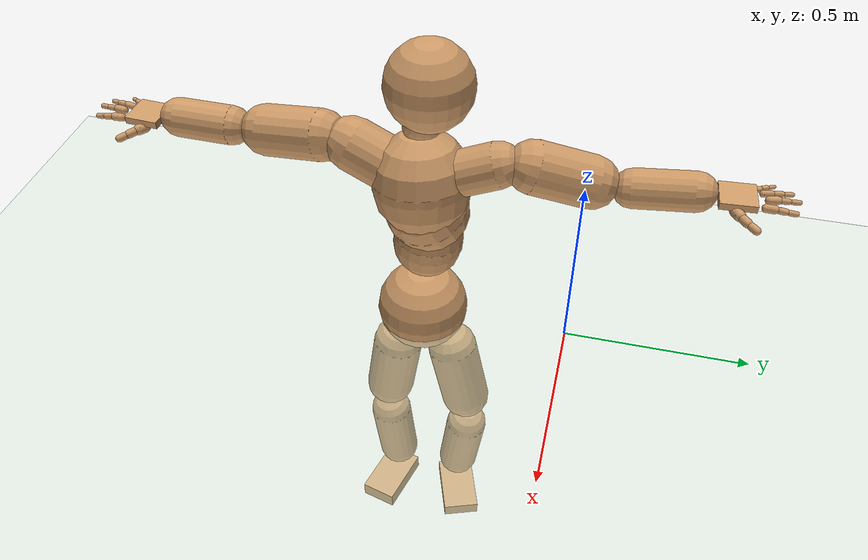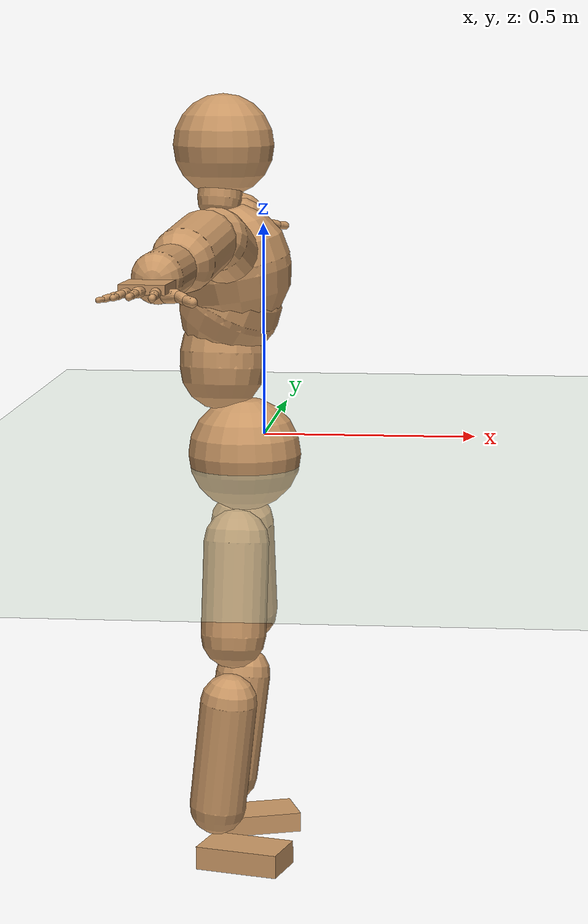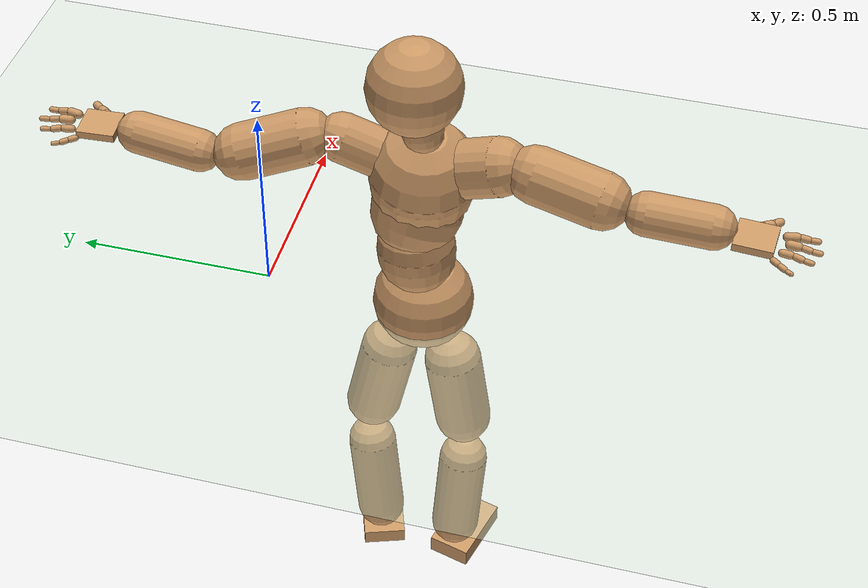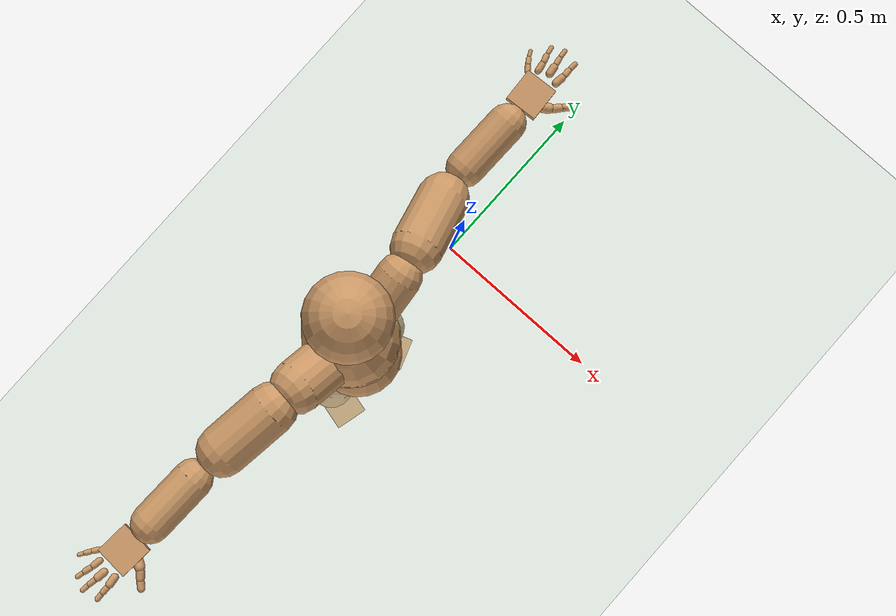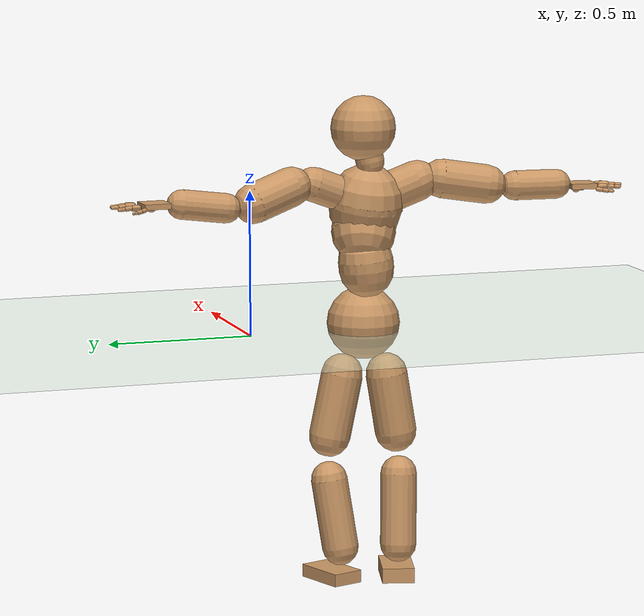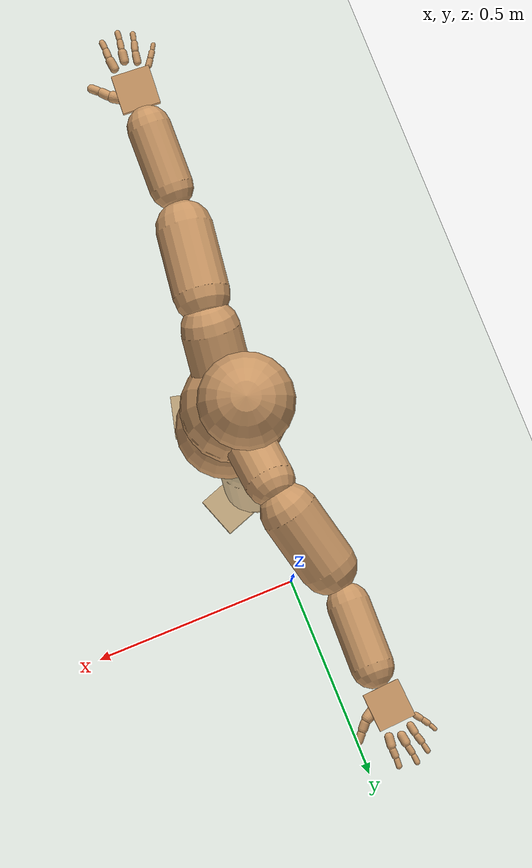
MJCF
<mujoco model="humanoid">
  <compiler coordinate="local" angle="radian"/>
  <default>
    <joint damping="0.0" armature="0.01" stiffness="0.0" limited="true"/>
    <geom conaffinity="1" condim="3" contype="7" margin="0.001" rgba="0.8 0.6 .4 1"/>
  </default>
  <asset>
    <texture type="skybox" builtin="gradient" rgb1=".4 .5 .6" rgb2="0 0 0" width="100" height="100"/>
    <texture builtin="flat" height="1278" mark="cross" markrgb="1 1 1" name="texgeom" random="0.01" rgb1="0.8 0.6 0.4" rgb2="0.8 0.6 0.4" type="cube" width="127"/>
    <texture builtin="checker" height="100" name="texplane" rgb1="0 0 0" rgb2="0.8 0.8 0.8" type="2d" width="100"/>
    <material name="MatPlane" reflectance="0.5" shininess="1" specular="1" texrepeat="60 60" texture="texplane"/>
    <material name="geom" texture="texgeom" texuniform="true"/>
  </asset>
  <worldbody>
    <light cutoff="100" diffuse="1 1 1" dir="-0 0 -1.3" directional="true" exponent="1" pos="0 0 1.3" specular=".1 .1 .1"/>
    <geom conaffinity="1" condim="3" name="floor" pos="0 0 0" rgba="0.8 0.9 0.8 1" size="100 100 .2" type="plane" material="MatPlane"/>
    <body name="Pelvis" pos="0.0021 -0.4046 0.0258">
      <freejoint name="Pelvis"/>
      <geom type="sphere" contype="1" conaffinity="1" density="500" size="0.1260" pos="0.0000 0.0000 0.0000" name="Pelvis"/>
      <body name="L_Hip" pos="-0.0182 0.0678 -0.1019">
        <joint name="L_Hip_x" type="hinge" pos="0 0 0" axis="1 0 0" stiffness="800" damping="80" armature="0.02" range="-180.0000 180.0000"/>
        <joint name="L_Hip_y" type="hinge" pos="0 0 0" axis="0 1 0" stiffness="800" damping="80" armature="0.02" range="-180.0000 180.0000"/>
        <joint name="L_Hip_z" type="hinge" pos="0 0 0" axis="0 0 1" stiffness="800" damping="80" armature="0.02" range="-180.0000 180.0000"/>
        <geom type="capsule" contype="1" conaffinity="1" density="500" fromto="0.0009 0.0149 -0.0720 0.0034 0.0596 -0.2878" size="0.0718" name="L_Hip"/>
        <body name="L_Knee" pos="0.0043 0.0745 -0.3598">
          <joint name="L_Knee_x" type="hinge" pos="0 0 0" axis="1 0 0" stiffness="800" damping="80" armature="0.02" range="-180.0000 180.0000"/>
          <joint name="L_Knee_y" type="hinge" pos="0 0 0" axis="0 1 0" stiffness="800" damping="80" armature="0.02" range="-180.0000 180.0000"/>
          <joint name="L_Knee_z" type="hinge" pos="0 0 0" axis="0 0 1" stiffness="800" damping="80" armature="0.02" range="-180.0000 180.0000"/>
          <geom type="capsule" contype="1" conaffinity="1" density="500" fromto="-0.0095 -0.0104 -0.0791 -0.0379 -0.0415 -0.3165" size="0.0629" name="L_Knee"/>
          <body name="L_Ankle" pos="-0.0474 -0.0518 -0.3956">
            <joint name="L_Ankle_x" type="hinge" pos="0 0 0" axis="1 0 0" stiffness="800" damping="80" armature="0.02" range="-180.0000 180.0000"/>
            <joint name="L_Ankle_y" type="hinge" pos="0 0 0" axis="0 1 0" stiffness="800" damping="80" armature="0.02" range="-180.0000 180.0000"/>
            <joint name="L_Ankle_z" type="hinge" pos="0 0 0" axis="0 0 1" stiffness="800" damping="80" armature="0.02" range="-180.0000 180.0000"/>
            <geom type="box" contype="1" conaffinity="1" density="500" pos="0.0673 0.0236 -0.0278" size="0.0946 0.056 0.0219" quat="0.9858 0.0000 0.0000 0.1678" name="L_Ankle"/>
            <body name="L_Toe" pos="0.1346 0.0472 -0.0556">
              <joint name="L_Toe_x" type="hinge" pos="0 0 0" axis="1 0 0" stiffness="500" damping="50" armature="0.02" range="-180.0000 180.0000"/>
              <joint name="L_Toe_y" type="hinge" pos="0 0 0" axis="0 1 0" stiffness="500" damping="50" armature="0.02" range="-180.0000 180.0000"/>
              <joint name="L_Toe_z" type="hinge" pos="0 0 0" axis="0 0 1" stiffness="500" damping="50" armature="0.02" range="-180.0000 180.0000"/>
              <geom type="box" contype="1" conaffinity="1" density="500" pos="0.0000 0.0000 0.0293" size="0.0011 0.0027 0.0012" quat="0.9851 0.0000 0.0000 0.1719" name="L_Toe"/>
            </body>
          </body>
        </body>
      </body>
      <body name="R_Hip" pos="-0.0082 -0.0705 -0.1144">
        <joint name="R_Hip_x" type="hinge" pos="0 0 0" axis="1 0 0" stiffness="800" damping="80" armature="0.02" range="-180.0000 180.0000"/>
        <joint name="R_Hip_y" type="hinge" pos="0 0 0" axis="0 1 0" stiffness="800" damping="80" armature="0.02" range="-180.0000 180.0000"/>
        <joint name="R_Hip_z" type="hinge" pos="0 0 0" axis="0 0 1" stiffness="800" damping="80" armature="0.02" range="-180.0000 180.0000"/>
        <geom type="capsule" contype="1" conaffinity="1" density="500" fromto="-0.0013 -0.0110 -0.0686 -0.0053 -0.0442 -0.2743" size="0.072" name="R_Hip"/>
        <body name="R_Knee" pos="-0.0066 -0.0552 -0.3429">
          <joint name="R_Knee_x" type="hinge" pos="0 0 0" axis="1 0 0" stiffness="800" damping="80" armature="0.02" range="-180.0000 180.0000"/>
          <joint name="R_Knee_y" type="hinge" pos="0 0 0" axis="0 1 0" stiffness="800" damping="80" armature="0.02" range="-180.0000 180.0000"/>
          <joint name="R_Knee_z" type="hinge" pos="0 0 0" axis="0 0 1" stiffness="800" damping="80" armature="0.02" range="-180.0000 180.0000"/>
          <geom type="capsule" contype="1" conaffinity="1" density="500" fromto="-0.0093 0.0036 -0.0814 -0.0373 0.0143 -0.3257" size="0.0632" name="R_Knee"/>
          <body name="R_Ankle" pos="-0.0466 0.0179 -0.4071">
            <joint name="R_Ankle_x" type="hinge" pos="0 0 0" axis="1 0 0" stiffness="800" damping="80" armature="0.02" range="-180.0000 180.0000"/>
            <joint name="R_Ankle_y" type="hinge" pos="0 0 0" axis="0 1 0" stiffness="800" damping="80" armature="0.02" range="-180.0000 180.0000"/>
            <joint name="R_Ankle_z" type="hinge" pos="0 0 0" axis="0 0 1" stiffness="800" damping="80" armature="0.02" range="-180.0000 180.0000"/>
            <geom type="box" contype="1" conaffinity="1" density="500" pos="0.0709 -0.0184 -0.0272" size="0.0946 0.056 0.026" quat="0.9920 0.0000 0.0000 -0.1264" name="R_Ankle"/>
            <body name="R_Toe" pos="0.1418 -0.0367 -0.0544">
              <joint name="R_Toe_x" type="hinge" pos="0 0 0" axis="1 0 0" stiffness="500" damping="50" armature="0.02" range="-180.0000 180.0000"/>
              <joint name="R_Toe_y" type="hinge" pos="0 0 0" axis="0 1 0" stiffness="500" damping="50" armature="0.02" range="-180.0000 180.0000"/>
              <joint name="R_Toe_z" type="hinge" pos="0 0 0" axis="0 0 1" stiffness="500" damping="50" armature="0.02" range="-180.0000 180.0000"/>
              <geom type="box" contype="1" conaffinity="1" density="500" pos="0.0000 0.0000 0.0245" size="0.0011 0.0027 0.0012" quat="0.9930 0.0000 0.0000 -0.1182" name="R_Toe"/>
            </body>
          </body>
        </body>
      </body>
      <body name="Torso" pos="-0.0502 -0.0027 0.1236">
        <joint name="Torso_x" type="hinge" pos="0 0 0" axis="1 0 0" stiffness="1000" damping="100" armature="0.02" range="-180.0000 180.0000"/>
        <joint name="Torso_y" type="hinge" pos="0 0 0" axis="0 1 0" stiffness="1000" damping="100" armature="0.02" range="-180.0000 180.0000"/>
        <joint name="Torso_z" type="hinge" pos="0 0 0" axis="0 0 1" stiffness="1000" damping="100" armature="0.02" range="-180.0000 180.0000"/>
        <geom type="capsule" contype="1" conaffinity="1" density="500" fromto="0.0018 0.0110 0.1022 0.0012 0.0073 0.0681" size="0.0944" name="Torso"/>
        <body name="Spine" pos="0.0029 0.0183 0.1703">
          <joint name="Spine_x" type="hinge" pos="0 0 0" axis="1 0 0" stiffness="1000" damping="100" armature="0.02" range="-180.0000 180.0000"/>
          <joint name="Spine_y" type="hinge" pos="0 0 0" axis="0 1 0" stiffness="1000" damping="100" armature="0.02" range="-180.0000 180.0000"/>
          <joint name="Spine_z" type="hinge" pos="0 0 0" axis="0 0 1" stiffness="1000" damping="100" armature="0.02" range="-180.0000 180.0000"/>
          <geom type="capsule" contype="1" conaffinity="1" density="500" fromto="0.0206 -0.0079 0.0388 0.0137 -0.0052 0.0258" size="0.1109" name="Spine"/>
          <body name="Chest" pos="0.0343 -0.0131 0.0646">
            <joint name="Chest_x" type="hinge" pos="0 0 0" axis="1 0 0" stiffness="1000" damping="100" armature="0.02" range="-180.0000 180.0000"/>
            <joint name="Chest_y" type="hinge" pos="0 0 0" axis="0 1 0" stiffness="1000" damping="100" armature="0.02" range="-180.0000 180.0000"/>
            <joint name="Chest_z" type="hinge" pos="0 0 0" axis="0 0 1" stiffness="1000" damping="100" armature="0.02" range="-180.0000 180.0000"/>
            <geom type="capsule" contype="1" conaffinity="1" density="500" fromto="-0.0105 -0.0053 0.0678 -0.0070 -0.0035 0.0452" size="0.1273" name="Chest"/>
            <body name="Neck" pos="-0.0394 -0.0154 0.1757">
              <joint name="Neck_x" type="hinge" pos="0 0 0" axis="1 0 0" stiffness="500" damping="50" armature="0.02" range="-180.0000 180.0000"/>
              <joint name="Neck_y" type="hinge" pos="0 0 0" axis="0 1 0" stiffness="500" damping="50" armature="0.02" range="-180.0000 180.0000"/>
              <joint name="Neck_z" type="hinge" pos="0 0 0" axis="0 0 1" stiffness="500" damping="50" armature="0.02" range="-180.0000 180.0000"/>
              <geom type="capsule" contype="1" conaffinity="1" density="500" fromto="0.0017 0.0057 0.0290 0.0069 0.0227 0.1159" size="0.0486" name="Neck"/>
              <body name="Head" pos="0.0086 0.0283 0.1449">
                <joint name="Head_x" type="hinge" pos="0 0 0" axis="1 0 0" stiffness="500" damping="50" armature="0.02" range="-180.0000 180.0000"/>
                <joint name="Head_y" type="hinge" pos="0 0 0" axis="0 1 0" stiffness="500" damping="50" armature="0.02" range="-180.0000 180.0000"/>
                <joint name="Head_z" type="hinge" pos="0 0 0" axis="0 0 1" stiffness="500" damping="50" armature="0.02" range="-180.0000 180.0000"/>
                <geom type="sphere" contype="1" conaffinity="1" density="500" size="0.1113" pos="0.0000 0.0000 0.0000" name="Head"/>
              </body>
            </body>
            <body name="L_Thorax" pos="-0.0055 0.0487 0.0811">
              <joint name="L_Thorax_x" type="hinge" pos="0 0 0" axis="1 0 0" stiffness="500" damping="50" armature="0.02" range="-180.0000 180.0000"/>
              <joint name="L_Thorax_y" type="hinge" pos="0 0 0" axis="0 1 0" stiffness="500" damping="50" armature="0.02" range="-180.0000 180.0000"/>
              <joint name="L_Thorax_z" type="hinge" pos="0 0 0" axis="0 0 1" stiffness="500" damping="50" armature="0.02" range="-180.0000 180.0000"/>
              <geom type="capsule" contype="1" conaffinity="1" density="500" fromto="-0.0030 0.0343 0.0131 -0.0119 0.1374 0.0525" size="0.0596" name="L_Thorax"/>
              <body name="L_Shoulder" pos="-0.0148 0.1717 0.0657">
                <joint name="L_Shoulder_x" type="hinge" pos="0 0 0" axis="1 0 0" stiffness="500" damping="50" armature="0.02" range="-180.0000 180.0000"/>
                <joint name="L_Shoulder_y" type="hinge" pos="0 0 0" axis="0 1 0" stiffness="500" damping="50" armature="0.02" range="-180.0000 180.0000"/>
                <joint name="L_Shoulder_z" type="hinge" pos="0 0 0" axis="0 0 1" stiffness="500" damping="50" armature="0.02" range="-180.0000 180.0000"/>
                <geom type="capsule" contype="1" conaffinity="1" density="500" fromto="-0.0120 0.0483 -0.0157 -0.0481 0.1933 -0.0629" size="0.068" name="L_Shoulder"/>
                <body name="L_Elbow" pos="-0.0601 0.2416 -0.0787">
                  <joint name="L_Elbow_x" type="hinge" pos="0 0 0" axis="1 0 0" stiffness="500" damping="50" armature="0.02" range="-720.0000 720.0000"/>
                  <joint name="L_Elbow_y" type="hinge" pos="0 0 0" axis="0 1 0" stiffness="500" damping="50" armature="0.02" range="-720.0000 720.0000"/>
                  <joint name="L_Elbow_z" type="hinge" pos="0 0 0" axis="0 0 1" stiffness="500" damping="50" armature="0.02" range="-720.0000 720.0000"/>
                  <geom type="capsule" contype="1" conaffinity="1" density="500" fromto="0.0014 0.0508 0.0065 0.0057 0.2031 0.0258" size="0.0505" name="L_Elbow"/>
                  <body name="L_Wrist" pos="0.0071 0.2539 0.0323">
                    <joint name="L_Wrist_x" type="hinge" pos="0 0 0" axis="1 0 0" stiffness="300" damping="30" armature="0.02" range="-180.0000 180.0000"/>
                    <joint name="L_Wrist_y" type="hinge" pos="0 0 0" axis="0 1 0" stiffness="300" damping="30" armature="0.02" range="-180.0000 180.0000"/>
                    <joint name="L_Wrist_z" type="hinge" pos="0 0 0" axis="0 0 1" stiffness="300" damping="30" armature="0.02" range="-180.0000 180.0000"/>
                    <geom type="box" contype="1" conaffinity="1" density="500" pos="-0.0026 0.0439 -0.0051" size="0.0455 0.0442 0.0093" quat="0.7281 0.0000 0.0000 -0.6855" name="L_Wrist"/>
                    <body name="L_Index1" pos="0.0238 0.1039 -0.007">
                      <joint name="L_Index1_x" type="hinge" pos="0 0 0" axis="1 0 0" stiffness="100" damping="10" armature="0.02" range="-180.0000 180.0000"/>
                      <joint name="L_Index1_y" type="hinge" pos="0 0 0" axis="0 1 0" stiffness="100" damping="10" armature="0.02" range="-180.0000 180.0000"/>
                      <joint name="L_Index1_z" type="hinge" pos="0 0 0" axis="0 0 1" stiffness="100" damping="10" armature="0.02" range="-180.0000 180.0000"/>
                      <geom type="capsule" contype="1" conaffinity="1" density="500" fromto="0.0008 0.0066 0.0004 0.0032 0.0265 0.0016" size="0.0105" name="L_Index1"/>
                      <body name="L_Index2" pos="0.004 0.0331 0.002">
                        <joint name="L_Index2_x" type="hinge" pos="0 0 0" axis="1 0 0" stiffness="100" damping="10" armature="0.02" range="-180.0000 180.0000"/>
                        <joint name="L_Index2_y" type="hinge" pos="0 0 0" axis="0 1 0" stiffness="100" damping="10" armature="0.02" range="-180.0000 180.0000"/>
                        <joint name="L_Index2_z" type="hinge" pos="0 0 0" axis="0 0 1" stiffness="100" damping="10" armature="0.02" range="-180.0000 180.0000"/>
                        <geom type="capsule" contype="1" conaffinity="1" density="500" fromto="-0.0001 0.0046 -0.0006 -0.0004 0.0186 -0.0024" size="0.0084" name="L_Index2"/>
                        <body name="L_Index3" pos="-0.0005 0.0232 -0.003">
                          <joint name="L_Index3_x" type="hinge" pos="0 0 0" axis="1 0 0" stiffness="100" damping="10" armature="0.02" range="-180.0000 180.0000"/>
                          <joint name="L_Index3_y" type="hinge" pos="0 0 0" axis="0 1 0" stiffness="100" damping="10" armature="0.02" range="-180.0000 180.0000"/>
                          <joint name="L_Index3_z" type="hinge" pos="0 0 0" axis="0 0 1" stiffness="100" damping="10" armature="0.02" range="-180.0000 180.0000"/>
                          <geom type="capsule" contype="1" conaffinity="1" density="500" fromto="0.0003 0.0050 -0.0002 0.0012 0.0202 -0.0008" size="0.007" name="L_Index3"/>
                        </body>
                      </body>
                    </body>
                    <body name="L_Middle1" pos="-0.0025 0.1117 -0.0035">
                      <joint name="L_Middle1_x" type="hinge" pos="0 0 0" axis="1 0 0" stiffness="100" damping="10" armature="0.02" range="-180.0000 180.0000"/>
                      <joint name="L_Middle1_y" type="hinge" pos="0 0 0" axis="0 1 0" stiffness="100" damping="10" armature="0.02" range="-180.0000 180.0000"/>
                      <joint name="L_Middle1_z" type="hinge" pos="0 0 0" axis="0 0 1" stiffness="100" damping="10" armature="0.02" range="-180.0000 180.0000"/>
                      <geom type="capsule" contype="1" conaffinity="1" density="500" fromto="-0.0008 0.0063 0.0002 -0.0034 0.0253 0.0007" size="0.0106" name="L_Middle1"/>
                      <body name="L_Middle2" pos="-0.0042 0.0316 0.0009">
                        <joint name="L_Middle2_x" type="hinge" pos="0 0 0" axis="1 0 0" stiffness="100" damping="10" armature="0.02" range="-180.0000 180.0000"/>
                        <joint name="L_Middle2_y" type="hinge" pos="0 0 0" axis="0 1 0" stiffness="100" damping="10" armature="0.02" range="-180.0000 180.0000"/>
                        <joint name="L_Middle2_z" type="hinge" pos="0 0 0" axis="0 0 1" stiffness="100" damping="10" armature="0.02" range="-180.0000 180.0000"/>
                        <geom type="capsule" contype="1" conaffinity="1" density="500" fromto="-0.0009 0.0048 -0.0005 -0.0035 0.0191 -0.0021" size="0.0077" name="L_Middle2"/>
                        <body name="L_Middle3" pos="-0.0044 0.0239 -0.0027">
                          <joint name="L_Middle3_x" type="hinge" pos="0 0 0" axis="1 0 0" stiffness="100" damping="10" armature="0.02" range="-180.0000 180.0000"/>
                          <joint name="L_Middle3_y" type="hinge" pos="0 0 0" axis="0 1 0" stiffness="100" damping="10" armature="0.02" range="-180.0000 180.0000"/>
                          <joint name="L_Middle3_z" type="hinge" pos="0 0 0" axis="0 0 1" stiffness="100" damping="10" armature="0.02" range="-180.0000 180.0000"/>
                          <geom type="capsule" contype="1" conaffinity="1" density="500" fromto="-0.0005 0.0052 -0.0001 -0.0019 0.0207 -0.0005" size="0.0066" name="L_Middle3"/>
                        </body>
                      </body>
                    </body>
                    <body name="L_Pinky1" pos="-0.0485 0.0848 -0.0135">
                      <joint name="L_Pinky1_x" type="hinge" pos="0 0 0" axis="1 0 0" stiffness="100" damping="10" armature="0.02" range="-180.0000 180.0000"/>
                      <joint name="L_Pinky1_y" type="hinge" pos="0 0 0" axis="0 1 0" stiffness="100" damping="10" armature="0.02" range="-180.0000 180.0000"/>
                      <joint name="L_Pinky1_z" type="hinge" pos="0 0 0" axis="0 0 1" stiffness="100" damping="10" armature="0.02" range="-180.0000 180.0000"/>
                      <geom type="capsule" contype="1" conaffinity="1" density="500" fromto="-0.0025 0.0034 -0.0004 -0.0100 0.0137 -0.0015" size="0.0076" name="L_Pinky1"/>
                      <body name="L_Pinky2" pos="-0.0125 0.0171 -0.0019">
                        <joint name="L_Pinky2_x" type="hinge" pos="0 0 0" axis="1 0 0" stiffness="100" damping="10" armature="0.02" range="-180.0000 180.0000"/>
                        <joint name="L_Pinky2_y" type="hinge" pos="0 0 0" axis="0 1 0" stiffness="100" damping="10" armature="0.02" range="-180.0000 180.0000"/>
                        <joint name="L_Pinky2_z" type="hinge" pos="0 0 0" axis="0 0 1" stiffness="100" damping="10" armature="0.02" range="-180.0000 180.0000"/>
                        <geom type="capsule" contype="1" conaffinity="1" density="500" fromto="-0.0023 0.0034 -0.0005 -0.0090 0.0135 -0.0020" size="0.0071" name="L_Pinky2"/>
                        <body name="L_Pinky3" pos="-0.0113 0.0168 -0.0025">
                          <joint name="L_Pinky3_x" type="hinge" pos="0 0 0" axis="1 0 0" stiffness="100" damping="10" armature="0.02" range="-180.0000 180.0000"/>
                          <joint name="L_Pinky3_y" type="hinge" pos="0 0 0" axis="0 1 0" stiffness="100" damping="10" armature="0.02" range="-180.0000 180.0000"/>
                          <joint name="L_Pinky3_z" type="hinge" pos="0 0 0" axis="0 0 1" stiffness="100" damping="10" armature="0.02" range="-180.0000 180.0000"/>
                          <geom type="capsule" contype="1" conaffinity="1" density="500" fromto="-0.0019 0.0038 -0.0001 -0.0074 0.0151 -0.0004" size="0.0052" name="L_Pinky3"/>
                        </body>
                      </body>
                    </body>
                    <body name="L_Ring1" pos="-0.0295 0.099 -0.0068">
                      <joint name="L_Ring1_x" type="hinge" pos="0 0 0" axis="1 0 0" stiffness="100" damping="10" armature="0.02" range="-180.0000 180.0000"/>
                      <joint name="L_Ring1_y" type="hinge" pos="0 0 0" axis="0 1 0" stiffness="100" damping="10" armature="0.02" range="-180.0000 180.0000"/>
                      <joint name="L_Ring1_z" type="hinge" pos="0 0 0" axis="0 0 1" stiffness="100" damping="10" armature="0.02" range="-180.0000 180.0000"/>
                      <geom type="capsule" contype="1" conaffinity="1" density="500" fromto="-0.0010 0.0059 0.0002 -0.0040 0.0237 0.0007" size="0.009" name="L_Ring1"/>
                      <body name="L_Ring2" pos="-0.005 0.0296 0.0009">
                        <joint name="L_Ring2_x" type="hinge" pos="0 0 0" axis="1 0 0" stiffness="100" damping="10" armature="0.02" range="-180.0000 180.0000"/>
                        <joint name="L_Ring2_y" type="hinge" pos="0 0 0" axis="0 1 0" stiffness="100" damping="10" armature="0.02" range="-180.0000 180.0000"/>
                        <joint name="L_Ring2_z" type="hinge" pos="0 0 0" axis="0 0 1" stiffness="100" damping="10" armature="0.02" range="-180.0000 180.0000"/>
                        <geom type="capsule" contype="1" conaffinity="1" density="500" fromto="-0.0013 0.0048 -0.0005 -0.0054 0.0191 -0.0021" size="0.0081" name="L_Ring2"/>
                        <body name="L_Ring3" pos="-0.0067 0.0238 -0.0027">
                          <joint name="L_Ring3_x" type="hinge" pos="0 0 0" axis="1 0 0" stiffness="100" damping="10" armature="0.02" range="-180.0000 180.0000"/>
                          <joint name="L_Ring3_y" type="hinge" pos="0 0 0" axis="0 1 0" stiffness="100" damping="10" armature="0.02" range="-180.0000 180.0000"/>
                          <joint name="L_Ring3_z" type="hinge" pos="0 0 0" axis="0 0 1" stiffness="100" damping="10" armature="0.02" range="-180.0000 180.0000"/>
                          <geom type="capsule" contype="1" conaffinity="1" density="500" fromto="-0.0009 0.0052 -0.0001 -0.0038 0.0207 -0.0005" size="0.0062" name="L_Ring3"/>
                        </body>
                      </body>
                    </body>
                    <body name="L_Thumb1" pos="0.0302 0.0393 -0.0206">
                      <joint name="L_Thumb1_x" type="hinge" pos="0 0 0" axis="1 0 0" stiffness="100" damping="10" armature="0.02" range="-180.0000 180.0000"/>
                      <joint name="L_Thumb1_y" type="hinge" pos="0 0 0" axis="0 1 0" stiffness="100" damping="10" armature="0.02" range="-180.0000 180.0000"/>
                      <joint name="L_Thumb1_z" type="hinge" pos="0 0 0" axis="0 0 1" stiffness="100" damping="10" armature="0.02" range="-180.0000 180.0000"/>
                      <geom type="capsule" contype="1" conaffinity="1" density="500" fromto="0.0056 0.0033 0.0006 0.0225 0.0133 0.0024" size="0.0139" name="L_Thumb1"/>
                      <body name="L_Thumb2" pos="0.0282 0.0166 0.003">
                        <joint name="L_Thumb2_x" type="hinge" pos="0 0 0" axis="1 0 0" stiffness="100" damping="10" armature="0.02" range="-180.0000 180.0000"/>
                        <joint name="L_Thumb2_y" type="hinge" pos="0 0 0" axis="0 1 0" stiffness="100" damping="10" armature="0.02" range="-180.0000 180.0000"/>
                        <joint name="L_Thumb2_z" type="hinge" pos="0 0 0" axis="0 0 1" stiffness="100" damping="10" armature="0.02" range="-180.0000 180.0000"/>
                        <geom type="capsule" contype="1" conaffinity="1" density="500" fromto="0.0034 0.0040 -0.0011 0.0137 0.0160 -0.0043" size="0.0112" name="L_Thumb2"/>
                        <body name="L_Thumb3" pos="0.0171 0.02 -0.0054">
                          <joint name="L_Thumb3_x" type="hinge" pos="0 0 0" axis="1 0 0" stiffness="100" damping="10" armature="0.02" range="-180.0000 180.0000"/>
                          <joint name="L_Thumb3_y" type="hinge" pos="0 0 0" axis="0 1 0" stiffness="100" damping="10" armature="0.02" range="-180.0000 180.0000"/>
                          <joint name="L_Thumb3_z" type="hinge" pos="0 0 0" axis="0 0 1" stiffness="100" damping="10" armature="0.02" range="-180.0000 180.0000"/>
                          <geom type="capsule" contype="1" conaffinity="1" density="500" fromto="0.0038 0.0044 -0.0007 0.0153 0.0176 -0.0027" size="0.0099" name="L_Thumb3"/>
                        </body>
                      </body>
                    </body>
                  </body>
                </body>
              </body>
            </body>
            <body name="R_Thorax" pos="-0.0079 -0.0598 0.082">
              <joint name="R_Thorax_x" type="hinge" pos="0 0 0" axis="1 0 0" stiffness="500" damping="50" armature="0.02" range="-180.0000 180.0000"/>
              <joint name="R_Thorax_y" type="hinge" pos="0 0 0" axis="0 1 0" stiffness="500" damping="50" armature="0.02" range="-180.0000 180.0000"/>
              <joint name="R_Thorax_z" type="hinge" pos="0 0 0" axis="0 0 1" stiffness="500" damping="50" armature="0.02" range="-180.0000 180.0000"/>
              <geom type="capsule" contype="1" conaffinity="1" density="500" fromto="-0.0040 -0.0314 0.0124 -0.0160 -0.1255 0.0497" size="0.0702" name="R_Thorax"/>
              <body name="R_Shoulder" pos="-0.02 -0.1569 0.0622">
                <joint name="R_Shoulder_x" type="hinge" pos="0 0 0" axis="1 0 0" stiffness="500" damping="50" armature="0.02" range="-180.0000 180.0000"/>
                <joint name="R_Shoulder_y" type="hinge" pos="0 0 0" axis="0 1 0" stiffness="500" damping="50" armature="0.02" range="-180.0000 180.0000"/>
                <joint name="R_Shoulder_z" type="hinge" pos="0 0 0" axis="0 0 1" stiffness="500" damping="50" armature="0.02" range="-180.0000 180.0000"/>
                <geom type="capsule" contype="1" conaffinity="1" density="500" fromto="-0.0073 -0.0523 -0.0078 -0.0292 -0.2091 -0.0312" size="0.0675" name="R_Shoulder"/>
                <body name="R_Elbow" pos="-0.0365 -0.2614 -0.039">
                  <joint name="R_Elbow_x" type="hinge" pos="0 0 0" axis="1 0 0" stiffness="500" damping="50" armature="0.02" range="-720.0000 720.0000"/>
                  <joint name="R_Elbow_y" type="hinge" pos="0 0 0" axis="0 1 0" stiffness="500" damping="50" armature="0.02" range="-720.0000 720.0000"/>
                  <joint name="R_Elbow_z" type="hinge" pos="0 0 0" axis="0 0 1" stiffness="500" damping="50" armature="0.02" range="-720.0000 720.0000"/>
                  <geom type="capsule" contype="1" conaffinity="1" density="500" fromto="-0.0016 -0.0495 -0.0001 -0.0063 -0.1982 -0.0005" size="0.0516" name="R_Elbow"/>
                  <body name="R_Wrist" pos="-0.0079 -0.2477 -0.0006">
                    <joint name="R_Wrist_x" type="hinge" pos="0 0 0" axis="1 0 0" stiffness="300" damping="30" armature="0.02" range="-180.0000 180.0000"/>
                    <joint name="R_Wrist_y" type="hinge" pos="0 0 0" axis="0 1 0" stiffness="300" damping="30" armature="0.02" range="-180.0000 180.0000"/>
                    <joint name="R_Wrist_z" type="hinge" pos="0 0 0" axis="0 0 1" stiffness="300" damping="30" armature="0.02" range="-180.0000 180.0000"/>
                    <geom type="box" contype="1" conaffinity="1" density="500" pos="-0.0032 -0.0435 -0.0072" size="0.0455 0.0453 0.0095" quat="0.7323 0.0000 0.0000 0.6809" name="R_Wrist"/>
                    <body name="R_Index1" pos="0.0228 -0.1032 -0.0112">
                      <joint name="R_Index1_x" type="hinge" pos="0 0 0" axis="1 0 0" stiffness="100" damping="10" armature="0.02" range="-180.0000 180.0000"/>
                      <joint name="R_Index1_y" type="hinge" pos="0 0 0" axis="0 1 0" stiffness="100" damping="10" armature="0.02" range="-180.0000 180.0000"/>
                      <joint name="R_Index1_z" type="hinge" pos="0 0 0" axis="0 0 1" stiffness="100" damping="10" armature="0.02" range="-180.0000 180.0000"/>
                      <geom type="capsule" contype="1" conaffinity="1" density="500" fromto="0.0008 -0.0066 0.0004 0.0032 -0.0265 0.0016" size="0.0105" name="R_Index1"/>
                      <body name="R_Index2" pos="0.004 -0.0331 0.002">
                        <joint name="R_Index2_x" type="hinge" pos="0 0 0" axis="1 0 0" stiffness="100" damping="10" armature="0.02" range="-180.0000 180.0000"/>
                        <joint name="R_Index2_y" type="hinge" pos="0 0 0" axis="0 1 0" stiffness="100" damping="10" armature="0.02" range="-180.0000 180.0000"/>
                        <joint name="R_Index2_z" type="hinge" pos="0 0 0" axis="0 0 1" stiffness="100" damping="10" armature="0.02" range="-180.0000 180.0000"/>
                        <geom type="capsule" contype="1" conaffinity="1" density="500" fromto="-0.0001 -0.0046 -0.0006 -0.0004 -0.0186 -0.0024" size="0.0084" name="R_Index2"/>
                        <body name="R_Index3" pos="-0.0005 -0.0232 -0.003">
                          <joint name="R_Index3_x" type="hinge" pos="0 0 0" axis="1 0 0" stiffness="100" damping="10" armature="0.02" range="-180.0000 180.0000"/>
                          <joint name="R_Index3_y" type="hinge" pos="0 0 0" axis="0 1 0" stiffness="100" damping="10" armature="0.02" range="-180.0000 180.0000"/>
                          <joint name="R_Index3_z" type="hinge" pos="0 0 0" axis="0 0 1" stiffness="100" damping="10" armature="0.02" range="-180.0000 180.0000"/>
                          <geom type="capsule" contype="1" conaffinity="1" density="500" fromto="0.0003 -0.0042 -0.0002 0.0012 -0.0170 -0.0008" size="0.0073" name="R_Index3"/>
                        </body>
                      </body>
                    </body>
                    <body name="R_Middle1" pos="-0.0036 -0.1109 -0.0077">
                      <joint name="R_Middle1_x" type="hinge" pos="0 0 0" axis="1 0 0" stiffness="100" damping="10" armature="0.02" range="-180.0000 180.0000"/>
                      <joint name="R_Middle1_y" type="hinge" pos="0 0 0" axis="0 1 0" stiffness="100" damping="10" armature="0.02" range="-180.0000 180.0000"/>
                      <joint name="R_Middle1_z" type="hinge" pos="0 0 0" axis="0 0 1" stiffness="100" damping="10" armature="0.02" range="-180.0000 180.0000"/>
                      <geom type="capsule" contype="1" conaffinity="1" density="500" fromto="-0.0008 -0.0063 0.0002 -0.0034 -0.0253 0.0007" size="0.0106" name="R_Middle1"/>
                      <body name="R_Middle2" pos="-0.0042 -0.0316 0.0009">
                        <joint name="R_Middle2_x" type="hinge" pos="0 0 0" axis="1 0 0" stiffness="100" damping="10" armature="0.02" range="-180.0000 180.0000"/>
                        <joint name="R_Middle2_y" type="hinge" pos="0 0 0" axis="0 1 0" stiffness="100" damping="10" armature="0.02" range="-180.0000 180.0000"/>
                        <joint name="R_Middle2_z" type="hinge" pos="0 0 0" axis="0 0 1" stiffness="100" damping="10" armature="0.02" range="-180.0000 180.0000"/>
                        <geom type="capsule" contype="1" conaffinity="1" density="500" fromto="-0.0009 -0.0048 -0.0005 -0.0035 -0.0191 -0.0021" size="0.0077" name="R_Middle2"/>
                        <body name="R_Middle3" pos="-0.0044 -0.0239 -0.0027">
                          <joint name="R_Middle3_x" type="hinge" pos="0 0 0" axis="1 0 0" stiffness="100" damping="10" armature="0.02" range="-180.0000 180.0000"/>
                          <joint name="R_Middle3_y" type="hinge" pos="0 0 0" axis="0 1 0" stiffness="100" damping="10" armature="0.02" range="-180.0000 180.0000"/>
                          <joint name="R_Middle3_z" type="hinge" pos="0 0 0" axis="0 0 1" stiffness="100" damping="10" armature="0.02" range="-180.0000 180.0000"/>
                          <geom type="capsule" contype="1" conaffinity="1" density="500" fromto="-0.0005 -0.0044 -0.0001 -0.0019 -0.0175 -0.0005" size="0.0069" name="R_Middle3"/>
                        </body>
                      </body>
                    </body>
                    <body name="R_Pinky1" pos="-0.0496 -0.0841 -0.0177">
                      <joint name="R_Pinky1_x" type="hinge" pos="0 0 0" axis="1 0 0" stiffness="100" damping="10" armature="0.02" range="-180.0000 180.0000"/>
                      <joint name="R_Pinky1_y" type="hinge" pos="0 0 0" axis="0 1 0" stiffness="100" damping="10" armature="0.02" range="-180.0000 180.0000"/>
                      <joint name="R_Pinky1_z" type="hinge" pos="0 0 0" axis="0 0 1" stiffness="100" damping="10" armature="0.02" range="-180.0000 180.0000"/>
                      <geom type="capsule" contype="1" conaffinity="1" density="500" fromto="-0.0025 -0.0034 -0.0004 -0.0100 -0.0137 -0.0015" size="0.0076" name="R_Pinky1"/>
                      <body name="R_Pinky2" pos="-0.0125 -0.0171 -0.0019">
                        <joint name="R_Pinky2_x" type="hinge" pos="0 0 0" axis="1 0 0" stiffness="100" damping="10" armature="0.02" range="-180.0000 180.0000"/>
                        <joint name="R_Pinky2_y" type="hinge" pos="0 0 0" axis="0 1 0" stiffness="100" damping="10" armature="0.02" range="-180.0000 180.0000"/>
                        <joint name="R_Pinky2_z" type="hinge" pos="0 0 0" axis="0 0 1" stiffness="100" damping="10" armature="0.02" range="-180.0000 180.0000"/>
                        <geom type="capsule" contype="1" conaffinity="1" density="500" fromto="-0.0023 -0.0034 -0.0005 -0.0090 -0.0135 -0.0020" size="0.0071" name="R_Pinky2"/>
                        <body name="R_Pinky3" pos="-0.0113 -0.0168 -0.0025">
                          <joint name="R_Pinky3_x" type="hinge" pos="0 0 0" axis="1 0 0" stiffness="100" damping="10" armature="0.02" range="-180.0000 180.0000"/>
                          <joint name="R_Pinky3_y" type="hinge" pos="0 0 0" axis="0 1 0" stiffness="100" damping="10" armature="0.02" range="-180.0000 180.0000"/>
                          <joint name="R_Pinky3_z" type="hinge" pos="0 0 0" axis="0 0 1" stiffness="100" damping="10" armature="0.02" range="-180.0000 180.0000"/>
                          <geom type="capsule" contype="1" conaffinity="1" density="500" fromto="-0.0019 -0.0030 -0.0001 -0.0074 -0.0119 -0.0004" size="0.0055" name="R_Pinky3"/>
                        </body>
                      </body>
                    </body>
                    <body name="R_Ring1" pos="-0.0305 -0.0983 -0.011">
                      <joint name="R_Ring1_x" type="hinge" pos="0 0 0" axis="1 0 0" stiffness="100" damping="10" armature="0.02" range="-180.0000 180.0000"/>
                      <joint name="R_Ring1_y" type="hinge" pos="0 0 0" axis="0 1 0" stiffness="100" damping="10" armature="0.02" range="-180.0000 180.0000"/>
                      <joint name="R_Ring1_z" type="hinge" pos="0 0 0" axis="0 0 1" stiffness="100" damping="10" armature="0.02" range="-180.0000 180.0000"/>
                      <geom type="capsule" contype="1" conaffinity="1" density="500" fromto="-0.0010 -0.0059 0.0002 -0.0040 -0.0237 0.0007" size="0.009" name="R_Ring1"/>
                      <body name="R_Ring2" pos="-0.005 -0.0296 0.0009">
                        <joint name="R_Ring2_x" type="hinge" pos="0 0 0" axis="1 0 0" stiffness="100" damping="10" armature="0.02" range="-180.0000 180.0000"/>
                        <joint name="R_Ring2_y" type="hinge" pos="0 0 0" axis="0 1 0" stiffness="100" damping="10" armature="0.02" range="-180.0000 180.0000"/>
                        <joint name="R_Ring2_z" type="hinge" pos="0 0 0" axis="0 0 1" stiffness="100" damping="10" armature="0.02" range="-180.0000 180.0000"/>
                        <geom type="capsule" contype="1" conaffinity="1" density="500" fromto="-0.0013 -0.0048 -0.0005 -0.0054 -0.0191 -0.0021" size="0.0081" name="R_Ring2"/>
                        <body name="R_Ring3" pos="-0.0067 -0.0238 -0.0027">
                          <joint name="R_Ring3_x" type="hinge" pos="0 0 0" axis="1 0 0" stiffness="100" damping="10" armature="0.02" range="-180.0000 180.0000"/>
                          <joint name="R_Ring3_y" type="hinge" pos="0 0 0" axis="0 1 0" stiffness="100" damping="10" armature="0.02" range="-180.0000 180.0000"/>
                          <joint name="R_Ring3_z" type="hinge" pos="0 0 0" axis="0 0 1" stiffness="100" damping="10" armature="0.02" range="-180.0000 180.0000"/>
                          <geom type="capsule" contype="1" conaffinity="1" density="500" fromto="-0.0009 -0.0044 -0.0001 -0.0038 -0.0175 -0.0005" size="0.0065" name="R_Ring3"/>
                        </body>
                      </body>
                    </body>
                    <body name="R_Thumb1" pos="0.0292 -0.0386 -0.0248">
                      <joint name="R_Thumb1_x" type="hinge" pos="0 0 0" axis="1 0 0" stiffness="100" damping="10" armature="0.02" range="-180.0000 180.0000"/>
                      <joint name="R_Thumb1_y" type="hinge" pos="0 0 0" axis="0 1 0" stiffness="100" damping="10" armature="0.02" range="-180.0000 180.0000"/>
                      <joint name="R_Thumb1_z" type="hinge" pos="0 0 0" axis="0 0 1" stiffness="100" damping="10" armature="0.02" range="-180.0000 180.0000"/>
                      <geom type="capsule" contype="1" conaffinity="1" density="500" fromto="0.0056 -0.0033 0.0006 0.0225 -0.0133 0.0024" size="0.0139" name="R_Thumb1"/>
                      <body name="R_Thumb2" pos="0.0282 -0.0166 0.003">
                        <joint name="R_Thumb2_x" type="hinge" pos="0 0 0" axis="1 0 0" stiffness="100" damping="10" armature="0.02" range="-180.0000 180.0000"/>
                        <joint name="R_Thumb2_y" type="hinge" pos="0 0 0" axis="0 1 0" stiffness="100" damping="10" armature="0.02" range="-180.0000 180.0000"/>
                        <joint name="R_Thumb2_z" type="hinge" pos="0 0 0" axis="0 0 1" stiffness="100" damping="10" armature="0.02" range="-180.0000 180.0000"/>
                        <geom type="capsule" contype="1" conaffinity="1" density="500" fromto="0.0034 -0.0040 -0.0011 0.0137 -0.0160 -0.0043" size="0.0112" name="R_Thumb2"/>
                        <body name="R_Thumb3" pos="0.0171 -0.02 -0.0054">
                          <joint name="R_Thumb3_x" type="hinge" pos="0 0 0" axis="1 0 0" stiffness="100" damping="10" armature="0.02" range="-180.0000 180.0000"/>
                          <joint name="R_Thumb3_y" type="hinge" pos="0 0 0" axis="0 1 0" stiffness="100" damping="10" armature="0.02" range="-180.0000 180.0000"/>
                          <joint name="R_Thumb3_z" type="hinge" pos="0 0 0" axis="0 0 1" stiffness="100" damping="10" armature="0.02" range="-180.0000 180.0000"/>
                          <geom type="capsule" contype="1" conaffinity="1" density="500" fromto="0.0038 -0.0036 -0.0007 0.0153 -0.0144 -0.0027" size="0.0101" name="R_Thumb3"/>
                        </body>
                      </body>
                    </body>
                  </body>
                </body>
              </body>
            </body>
          </body>
        </body>
      </body>
    </body>
  </worldbody>
  <actuator>
    <motor name="L_Hip_x" joint="L_Hip_x" gear="500"/>
    <motor name="L_Hip_y" joint="L_Hip_y" gear="500"/>
    <motor name="L_Hip_z" joint="L_Hip_z" gear="500"/>
    <motor name="L_Knee_x" joint="L_Knee_x" gear="500"/>
    <motor name="L_Knee_y" joint="L_Knee_y" gear="500"/>
    <motor name="L_Knee_z" joint="L_Knee_z" gear="500"/>
    <motor name="L_Ankle_x" joint="L_Ankle_x" gear="500"/>
    <motor name="L_Ankle_y" joint="L_Ankle_y" gear="500"/>
    <motor name="L_Ankle_z" joint="L_Ankle_z" gear="500"/>
    <motor name="L_Toe_x" joint="L_Toe_x" gear="500"/>
    <motor name="L_Toe_y" joint="L_Toe_y" gear="500"/>
    <motor name="L_Toe_z" joint="L_Toe_z" gear="500"/>
    <motor name="R_Hip_x" joint="R_Hip_x" gear="500"/>
    <motor name="R_Hip_y" joint="R_Hip_y" gear="500"/>
    <motor name="R_Hip_z" joint="R_Hip_z" gear="500"/>
    <motor name="R_Knee_x" joint="R_Knee_x" gear="500"/>
    <motor name="R_Knee_y" joint="R_Knee_y" gear="500"/>
    <motor name="R_Knee_z" joint="R_Knee_z" gear="500"/>
    <motor name="R_Ankle_x" joint="R_Ankle_x" gear="500"/>
    <motor name="R_Ankle_y" joint="R_Ankle_y" gear="500"/>
    <motor name="R_Ankle_z" joint="R_Ankle_z" gear="500"/>
    <motor name="R_Toe_x" joint="R_Toe_x" gear="500"/>
    <motor name="R_Toe_y" joint="R_Toe_y" gear="500"/>
    <motor name="R_Toe_z" joint="R_Toe_z" gear="500"/>
    <motor name="Torso_x" joint="Torso_x" gear="500"/>
    <motor name="Torso_y" joint="Torso_y" gear="500"/>
    <motor name="Torso_z" joint="Torso_z" gear="500"/>
    <motor name="Spine_x" joint="Spine_x" gear="500"/>
    <motor name="Spine_y" joint="Spine_y" gear="500"/>
    <motor name="Spine_z" joint="Spine_z" gear="500"/>
    <motor name="Chest_x" joint="Chest_x" gear="500"/>
    <motor name="Chest_y" joint="Chest_y" gear="500"/>
    <motor name="Chest_z" joint="Chest_z" gear="500"/>
    <motor name="Neck_x" joint="Neck_x" gear="500"/>
    <motor name="Neck_y" joint="Neck_y" gear="500"/>
    <motor name="Neck_z" joint="Neck_z" gear="500"/>
    <motor name="Head_x" joint="Head_x" gear="500"/>
    <motor name="Head_y" joint="Head_y" gear="500"/>
    <motor name="Head_z" joint="Head_z" gear="500"/>
    <motor name="L_Thorax_x" joint="L_Thorax_x" gear="500"/>
    <motor name="L_Thorax_y" joint="L_Thorax_y" gear="500"/>
    <motor name="L_Thorax_z" joint="L_Thorax_z" gear="500"/>
    <motor name="L_Shoulder_x" joint="L_Shoulder_x" gear="500"/>
    <motor name="L_Shoulder_y" joint="L_Shoulder_y" gear="500"/>
    <motor name="L_Shoulder_z" joint="L_Shoulder_z" gear="500"/>
    <motor name="L_Elbow_x" joint="L_Elbow_x" gear="500"/>
    <motor name="L_Elbow_y" joint="L_Elbow_y" gear="500"/>
    <motor name="L_Elbow_z" joint="L_Elbow_z" gear="500"/>
    <motor name="L_Wrist_x" joint="L_Wrist_x" gear="500"/>
    <motor name="L_Wrist_y" joint="L_Wrist_y" gear="500"/>
    <motor name="L_Wrist_z" joint="L_Wrist_z" gear="500"/>
    <motor name="L_Index1_x" joint="L_Index1_x" gear="500"/>
    <motor name="L_Index1_y" joint="L_Index1_y" gear="500"/>
    <motor name="L_Index1_z" joint="L_Index1_z" gear="500"/>
    <motor name="L_Index2_x" joint="L_Index2_x" gear="500"/>
    <motor name="L_Index2_y" joint="L_Index2_y" gear="500"/>
    <motor name="L_Index2_z" joint="L_Index2_z" gear="500"/>
    <motor name="L_Index3_x" joint="L_Index3_x" gear="500"/>
    <motor name="L_Index3_y" joint="L_Index3_y" gear="500"/>
    <motor name="L_Index3_z" joint="L_Index3_z" gear="500"/>
    <motor name="L_Middle1_x" joint="L_Middle1_x" gear="500"/>
    <motor name="L_Middle1_y" joint="L_Middle1_y" gear="500"/>
    <motor name="L_Middle1_z" joint="L_Middle1_z" gear="500"/>
    <motor name="L_Middle2_x" joint="L_Middle2_x" gear="500"/>
    <motor name="L_Middle2_y" joint="L_Middle2_y" gear="500"/>
    <motor name="L_Middle2_z" joint="L_Middle2_z" gear="500"/>
    <motor name="L_Middle3_x" joint="L_Middle3_x" gear="500"/>
    <motor name="L_Middle3_y" joint="L_Middle3_y" gear="500"/>
    <motor name="L_Middle3_z" joint="L_Middle3_z" gear="500"/>
    <motor name="L_Pinky1_x" joint="L_Pinky1_x" gear="500"/>
    <motor name="L_Pinky1_y" joint="L_Pinky1_y" gear="500"/>
    <motor name="L_Pinky1_z" joint="L_Pinky1_z" gear="500"/>
    <motor name="L_Pinky2_x" joint="L_Pinky2_x" gear="500"/>
    <motor name="L_Pinky2_y" joint="L_Pinky2_y" gear="500"/>
    <motor name="L_Pinky2_z" joint="L_Pinky2_z" gear="500"/>
    <motor name="L_Pinky3_x" joint="L_Pinky3_x" gear="500"/>
    <motor name="L_Pinky3_y" joint="L_Pinky3_y" gear="500"/>
    <motor name="L_Pinky3_z" joint="L_Pinky3_z" gear="500"/>
    <motor name="L_Ring1_x" joint="L_Ring1_x" gear="500"/>
    <motor name="L_Ring1_y" joint="L_Ring1_y" gear="500"/>
    <motor name="L_Ring1_z" joint="L_Ring1_z" gear="500"/>
    <motor name="L_Ring2_x" joint="L_Ring2_x" gear="500"/>
    <motor name="L_Ring2_y" joint="L_Ring2_y" gear="500"/>
    <motor name="L_Ring2_z" joint="L_Ring2_z" gear="500"/>
    <motor name="L_Ring3_x" joint="L_Ring3_x" gear="500"/>
    <motor name="L_Ring3_y" joint="L_Ring3_y" gear="500"/>
    <motor name="L_Ring3_z" joint="L_Ring3_z" gear="500"/>
    <motor name="L_Thumb1_x" joint="L_Thumb1_x" gear="500"/>
    <motor name="L_Thumb1_y" joint="L_Thumb1_y" gear="500"/>
    <motor name="L_Thumb1_z" joint="L_Thumb1_z" gear="500"/>
    <motor name="L_Thumb2_x" joint="L_Thumb2_x" gear="500"/>
    <motor name="L_Thumb2_y" joint="L_Thumb2_y" gear="500"/>
    <motor name="L_Thumb2_z" joint="L_Thumb2_z" gear="500"/>
    <motor name="L_Thumb3_x" joint="L_Thumb3_x" gear="500"/>
    <motor name="L_Thumb3_y" joint="L_Thumb3_y" gear="500"/>
    <motor name="L_Thumb3_z" joint="L_Thumb3_z" gear="500"/>
    <motor name="R_Thorax_x" joint="R_Thorax_x" gear="500"/>
    <motor name="R_Thorax_y" joint="R_Thorax_y" gear="500"/>
    <motor name="R_Thorax_z" joint="R_Thorax_z" gear="500"/>
    <motor name="R_Shoulder_x" joint="R_Shoulder_x" gear="500"/>
    <motor name="R_Shoulder_y" joint="R_Shoulder_y" gear="500"/>
    <motor name="R_Shoulder_z" joint="R_Shoulder_z" gear="500"/>
    <motor name="R_Elbow_x" joint="R_Elbow_x" gear="500"/>
    <motor name="R_Elbow_y" joint="R_Elbow_y" gear="500"/>
    <motor name="R_Elbow_z" joint="R_Elbow_z" gear="500"/>
    <motor name="R_Wrist_x" joint="R_Wrist_x" gear="500"/>
    <motor name="R_Wrist_y" joint="R_Wrist_y" gear="500"/>
    <motor name="R_Wrist_z" joint="R_Wrist_z" gear="500"/>
    <motor name="R_Index1_x" joint="R_Index1_x" gear="500"/>
    <motor name="R_Index1_y" joint="R_Index1_y" gear="500"/>
    <motor name="R_Index1_z" joint="R_Index1_z" gear="500"/>
    <motor name="R_Index2_x" joint="R_Index2_x" gear="500"/>
    <motor name="R_Index2_y" joint="R_Index2_y" gear="500"/>
    <motor name="R_Index2_z" joint="R_Index2_z" gear="500"/>
    <motor name="R_Index3_x" joint="R_Index3_x" gear="500"/>
    <motor name="R_Index3_y" joint="R_Index3_y" gear="500"/>
    <motor name="R_Index3_z" joint="R_Index3_z" gear="500"/>
    <motor name="R_Middle1_x" joint="R_Middle1_x" gear="500"/>
    <motor name="R_Middle1_y" joint="R_Middle1_y" gear="500"/>
    <motor name="R_Middle1_z" joint="R_Middle1_z" gear="500"/>
    <motor name="R_Middle2_x" joint="R_Middle2_x" gear="500"/>
    <motor name="R_Middle2_y" joint="R_Middle2_y" gear="500"/>
    <motor name="R_Middle2_z" joint="R_Middle2_z" gear="500"/>
    <motor name="R_Middle3_x" joint="R_Middle3_x" gear="500"/>
    <motor name="R_Middle3_y" joint="R_Middle3_y" gear="500"/>
    <motor name="R_Middle3_z" joint="R_Middle3_z" gear="500"/>
    <motor name="R_Pinky1_x" joint="R_Pinky1_x" gear="500"/>
    <motor name="R_Pinky1_y" joint="R_Pinky1_y" gear="500"/>
    <motor name="R_Pinky1_z" joint="R_Pinky1_z" gear="500"/>
    <motor name="R_Pinky2_x" joint="R_Pinky2_x" gear="500"/>
    <motor name="R_Pinky2_y" joint="R_Pinky2_y" gear="500"/>
    <motor name="R_Pinky2_z" joint="R_Pinky2_z" gear="500"/>
    <motor name="R_Pinky3_x" joint="R_Pinky3_x" gear="500"/>
    <motor name="R_Pinky3_y" joint="R_Pinky3_y" gear="500"/>
    <motor name="R_Pinky3_z" joint="R_Pinky3_z" gear="500"/>
    <motor name="R_Ring1_x" joint="R_Ring1_x" gear="500"/>
    <motor name="R_Ring1_y" joint="R_Ring1_y" gear="500"/>
    <motor name="R_Ring1_z" joint="R_Ring1_z" gear="500"/>
    <motor name="R_Ring2_x" joint="R_Ring2_x" gear="500"/>
    <motor name="R_Ring2_y" joint="R_Ring2_y" gear="500"/>
    <motor name="R_Ring2_z" joint="R_Ring2_z" gear="500"/>
    <motor name="R_Ring3_x" joint="R_Ring3_x" gear="500"/>
    <motor name="R_Ring3_y" joint="R_Ring3_y" gear="500"/>
    <motor name="R_Ring3_z" joint="R_Ring3_z" gear="500"/>
    <motor name="R_Thumb1_x" joint="R_Thumb1_x" gear="500"/>
    <motor name="R_Thumb1_y" joint="R_Thumb1_y" gear="500"/>
    <motor name="R_Thumb1_z" joint="R_Thumb1_z" gear="500"/>
    <motor name="R_Thumb2_x" joint="R_Thumb2_x" gear="500"/>
    <motor name="R_Thumb2_y" joint="R_Thumb2_y" gear="500"/>
    <motor name="R_Thumb2_z" joint="R_Thumb2_z" gear="500"/>
    <motor name="R_Thumb3_x" joint="R_Thumb3_x" gear="500"/>
    <motor name="R_Thumb3_y" joint="R_Thumb3_y" gear="500"/>
    <motor name="R_Thumb3_z" joint="R_Thumb3_z" gear="500"/>
  </actuator>
  <contact>
    <exclude body1="Torso" body2="Chest"/>
    <exclude body1="Head" body2="Chest"/>
    <exclude body1="R_Knee" body2="R_Toe"/>
    <exclude body1="R_Knee" body2="L_Ankle"/>
    <exclude body1="R_Knee" body2="L_Toe"/>
    <exclude body1="L_Knee" body2="L_Toe"/>
    <exclude body1="L_Knee" body2="R_Ankle"/>
    <exclude body1="L_Knee" body2="R_Toe"/>
    <exclude body1="L_Shoulder" body2="Chest"/>
    <exclude body1="R_Shoulder" body2="Chest"/>
  </contact>
  <sensor/>
  <size njmax="700" nconmax="700"/>
</mujoco>
